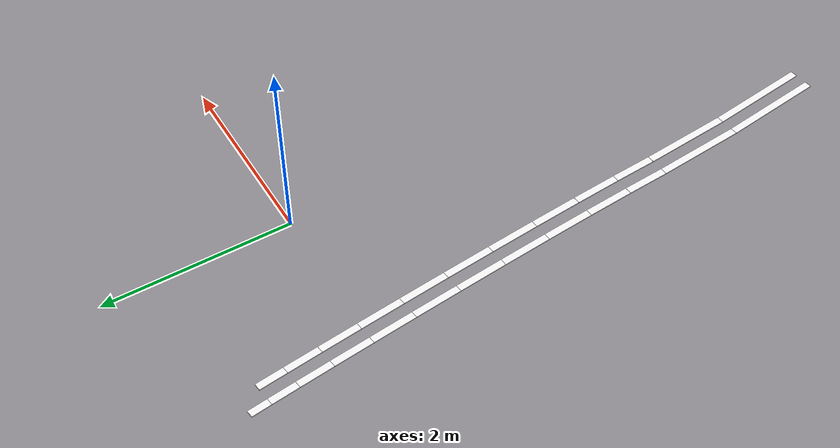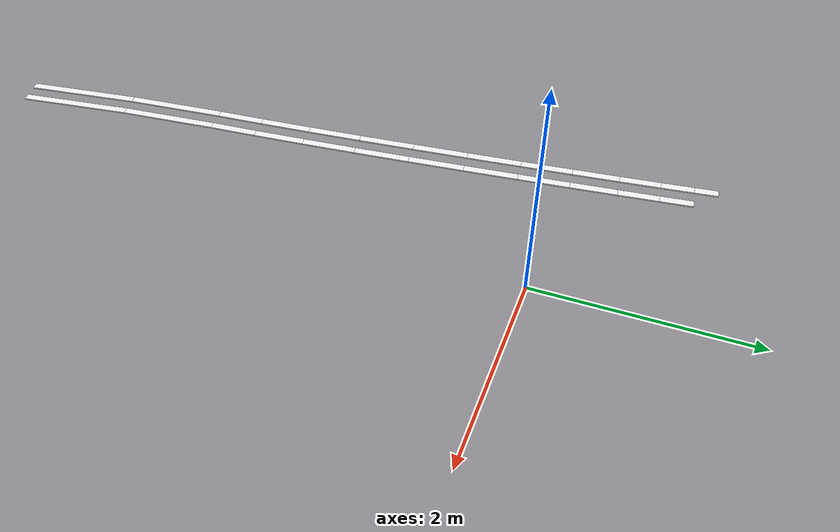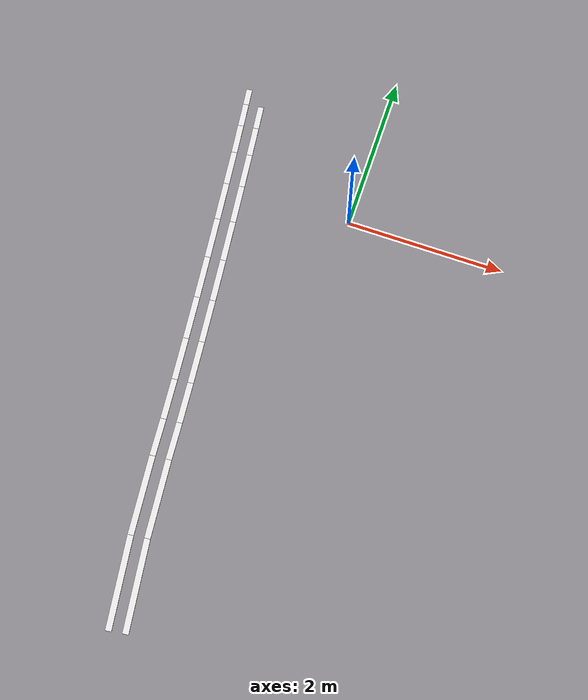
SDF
<sdf version="1.9">
 <world name="igvc_competition">
  <model name="Line_001_0245">
   <static>1</static>
   <pose>-1.7938 1.2298 0.011 0 0 -1.441374</pose>
   <link name="link">
    <visual name="visual">
     <geometry><box><size>0.2154 0.0762 0.012</size></box></geometry>
     <material>
      <ambient>0.98 0.98 0.98 1</ambient>
      <diffuse>0.98 0.98 0.98 1</diffuse>
      <specular>0.05 0.05 0.05 1</specular>
      <emissive>0.9 0.9 0.9 1</emissive>
     </material>
    </visual>
   </link>
  </model>
  <model name="Line_001_0246">
   <static>1</static>
   <pose>-1.5626 0.9964 0.011 0 0 -1.447009</pose>
   <link name="link">
    <visual name="visual">
     <geometry><box><size>0.3061 0.0762 0.012</size></box></geometry>
     <material>
      <ambient>0.98 0.98 0.98 1</ambient>
      <diffuse>0.98 0.98 0.98 1</diffuse>
      <specular>0.05 0.05 0.05 1</specular>
      <emissive>0.9 0.9 0.9 1</emissive>
     </material>
    </visual>
   </link>
  </model>
  <model name="Line_001_0247">
   <static>1</static>
   <pose>-1.7611 0.9716 0.011 0 0 -1.446929</pose>
   <link name="link">
    <visual name="visual">
     <geometry><box><size>0.3051 0.0762 0.012</size></box></geometry>
     <material>
      <ambient>0.98 0.98 0.98 1</ambient>
      <diffuse>0.98 0.98 0.98 1</diffuse>
      <specular>0.05 0.05 0.05 1</specular>
      <emissive>0.9 0.9 0.9 1</emissive>
     </material>
    </visual>
   </link>
  </model>
  <model name="Line_001_0248">
   <static>1</static>
   <pose>-1.5209 0.6556 0.011 0 0 -1.450679</pose>
   <link name="link">
    <visual name="visual">
     <geometry><box><size>0.3805 0.0762 0.012</size></box></geometry>
     <material>
      <ambient>0.98 0.98 0.98 1</ambient>
      <diffuse>0.98 0.98 0.98 1</diffuse>
      <specular>0.05 0.05 0.05 1</specular>
      <emissive>0.9 0.9 0.9 1</emissive>
     </material>
    </visual>
   </link>
  </model>
  <model name="Line_001_0249">
   <static>1</static>
   <pose>-1.7195 0.6317 0.011 0 0 -1.450719</pose>
   <link name="link">
    <visual name="visual">
     <geometry><box><size>0.3798 0.0762 0.012</size></box></geometry>
     <material>
      <ambient>0.98 0.98 0.98 1</ambient>
      <diffuse>0.98 0.98 0.98 1</diffuse>
      <specular>0.05 0.05 0.05 1</specular>
      <emissive>0.9 0.9 0.9 1</emissive>
     </material>
    </visual>
   </link>
  </model>
  <model name="Line_001_0250">
   <static>1</static>
   <pose>-1.4726 0.2480 0.011 0 0 -1.454523</pose>
   <link name="link">
    <visual name="visual">
     <geometry><box><size>0.4405 0.0762 0.012</size></box></geometry>
     <material>
      <ambient>0.98 0.98 0.98 1</ambient>
      <diffuse>0.98 0.98 0.98 1</diffuse>
      <specular>0.05 0.05 0.05 1</specular>
      <emissive>0.9 0.9 0.9 1</emissive>
     </material>
    </visual>
   </link>
  </model>
  <model name="Line_001_0251">
   <static>1</static>
   <pose>-1.6712 0.2247 0.011 0 0 -1.454564</pose>
   <link name="link">
    <visual name="visual">
     <geometry><box><size>0.4398 0.0762 0.012</size></box></geometry>
     <material>
      <ambient>0.98 0.98 0.98 1</ambient>
      <diffuse>0.98 0.98 0.98 1</diffuse>
      <specular>0.05 0.05 0.05 1</specular>
      <emissive>0.9 0.9 0.9 1</emissive>
     </material>
    </visual>
   </link>
  </model>
  <model name="Line_001_0252">
   <static>1</static>
   <pose>-1.4196 -0.2122 0.011 0 0 -1.457775</pose>
   <link name="link">
    <visual name="visual">
     <geometry><box><size>0.4859 0.0762 0.012</size></box></geometry>
     <material>
      <ambient>0.98 0.98 0.98 1</ambient>
      <diffuse>0.98 0.98 0.98 1</diffuse>
      <specular>0.05 0.05 0.05 1</specular>
      <emissive>0.9 0.9 0.9 1</emissive>
     </material>
    </visual>
   </link>
  </model>
  <model name="Line_001_0253">
   <static>1</static>
   <pose>-1.6183 -0.2348 0.011 0 0 -1.457613</pose>
   <link name="link">
    <visual name="visual">
     <geometry><box><size>0.4852 0.0762 0.012</size></box></geometry>
     <material>
      <ambient>0.98 0.98 0.98 1</ambient>
      <diffuse>0.98 0.98 0.98 1</diffuse>
      <specular>0.05 0.05 0.05 1</specular>
      <emissive>0.9 0.9 0.9 1</emissive>
     </material>
    </visual>
   </link>
  </model>
  <model name="Line_001_0254">
   <static>1</static>
   <pose>-1.3640 -0.7105 0.011 0 0 -1.461443</pose>
   <link name="link">
    <visual name="visual">
     <geometry><box><size>0.5168 0.0762 0.012</size></box></geometry>
     <material>
      <ambient>0.98 0.98 0.98 1</ambient>
      <diffuse>0.98 0.98 0.98 1</diffuse>
      <specular>0.05 0.05 0.05 1</specular>
      <emissive>0.9 0.9 0.9 1</emissive>
     </material>
    </visual>
   </link>
  </model>
  <model name="Line_001_0255">
   <static>1</static>
   <pose>-1.5627 -0.7323 0.011 0 0 -1.461466</pose>
   <link name="link">
    <visual name="visual">
     <geometry><box><size>0.5160 0.0762 0.012</size></box></geometry>
     <material>
      <ambient>0.98 0.98 0.98 1</ambient>
      <diffuse>0.98 0.98 0.98 1</diffuse>
      <specular>0.05 0.05 0.05 1</specular>
      <emissive>0.9 0.9 0.9 1</emissive>
     </material>
    </visual>
   </link>
  </model>
  <model name="Line_001_0256">
   <static>1</static>
   <pose>-1.3078 -1.2325 0.011 0 0 -1.465586</pose>
   <link name="link">
    <visual name="visual">
     <geometry><box><size>0.5332 0.0762 0.012</size></box></geometry>
     <material>
      <ambient>0.98 0.98 0.98 1</ambient>
      <diffuse>0.98 0.98 0.98 1</diffuse>
      <specular>0.05 0.05 0.05 1</specular>
      <emissive>0.9 0.9 0.9 1</emissive>
     </material>
    </visual>
   </link>
  </model>
  <model name="Line_001_0257">
   <static>1</static>
   <pose>-1.5067 -1.2534 0.011 0 0 -1.465782</pose>
   <link name="link">
    <visual name="visual">
     <geometry><box><size>0.5323 0.0762 0.012</size></box></geometry>
     <material>
      <ambient>0.98 0.98 0.98 1</ambient>
      <diffuse>0.98 0.98 0.98 1</diffuse>
      <specular>0.05 0.05 0.05 1</specular>
      <emissive>0.9 0.9 0.9 1</emissive>
     </material>
    </visual>
   </link>
  </model>
  <model name="Line_001_0258">
   <static>1</static>
   <pose>-1.2530 -1.7637 0.011 0 0 -1.470625</pose>
   <link name="link">
    <visual name="visual">
     <geometry><box><size>0.5350 0.0762 0.012</size></box></geometry>
     <material>
      <ambient>0.98 0.98 0.98 1</ambient>
      <diffuse>0.98 0.98 0.98 1</diffuse>
      <specular>0.05 0.05 0.05 1</specular>
      <emissive>0.9 0.9 0.9 1</emissive>
     </material>
    </visual>
   </link>
  </model>
  <model name="Line_001_0259">
   <static>1</static>
   <pose>-1.4521 -1.7837 0.011 0 0 -1.470606</pose>
   <link name="link">
    <visual name="visual">
     <geometry><box><size>0.5339 0.0762 0.012</size></box></geometry>
     <material>
      <ambient>0.98 0.98 0.98 1</ambient>
      <diffuse>0.98 0.98 0.98 1</diffuse>
      <specular>0.05 0.05 0.05 1</specular>
      <emissive>0.9 0.9 0.9 1</emissive>
     </material>
    </visual>
   </link>
  </model>
  <model name="Line_001_0260">
   <static>1</static>
   <pose>-1.2018 -2.2899 0.011 0 0 -1.477034</pose>
   <link name="link">
    <visual name="visual">
     <geometry><box><size>0.5223 0.0762 0.012</size></box></geometry>
     <material>
      <ambient>0.98 0.98 0.98 1</ambient>
      <diffuse>0.98 0.98 0.98 1</diffuse>
      <specular>0.05 0.05 0.05 1</specular>
      <emissive>0.9 0.9 0.9 1</emissive>
     </material>
    </visual>
   </link>
  </model>
  <model name="Line_001_0261">
   <static>1</static>
   <pose>-1.4010 -2.3086 0.011 0 0 -1.476973</pose>
   <link name="link">
    <visual name="visual">
     <geometry><box><size>0.5209 0.0762 0.012</size></box></geometry>
     <material>
      <ambient>0.98 0.98 0.98 1</ambient>
      <diffuse>0.98 0.98 0.98 1</diffuse>
      <specular>0.05 0.05 0.05 1</specular>
      <emissive>0.9 0.9 0.9 1</emissive>
     </material>
    </visual>
   </link>
  </model>
  <model name="Line_001_0262">
   <static>1</static>
   <pose>-1.1562 -2.7967 0.011 0 0 -1.484889</pose>
   <link name="link">
    <visual name="visual">
     <geometry><box><size>0.4953 0.0762 0.012</size></box></geometry>
     <material>
      <ambient>0.98 0.98 0.98 1</ambient>
      <diffuse>0.98 0.98 0.98 1</diffuse>
      <specular>0.05 0.05 0.05 1</specular>
      <emissive>0.9 0.9 0.9 1</emissive>
     </material>
    </visual>
   </link>
  </model>
  <model name="Line_001_0263">
   <static>1</static>
   <pose>-1.3555 -2.8136 0.011 0 0 -1.484945</pose>
   <link name="link">
    <visual name="visual">
     <geometry><box><size>0.4933 0.0762 0.012</size></box></geometry>
     <material>
      <ambient>0.98 0.98 0.98 1</ambient>
      <diffuse>0.98 0.98 0.98 1</diffuse>
      <specular>0.05 0.05 0.05 1</specular>
      <emissive>0.9 0.9 0.9 1</emissive>
     </material>
    </visual>
   </link>
  </model>
  <model name="Line_001_0264">
   <static>1</static>
   <pose>-1.1180 -3.2687 0.011 0 0 -1.496163</pose>
   <link name="link">
    <visual name="visual">
     <geometry><box><size>0.4520 0.0762 0.012</size></box></geometry>
     <material>
      <ambient>0.98 0.98 0.98 1</ambient>
      <diffuse>0.98 0.98 0.98 1</diffuse>
      <specular>0.05 0.05 0.05 1</specular>
      <emissive>0.9 0.9 0.9 1</emissive>
     </material>
    </visual>
   </link>
  </model>
  <model name="Line_001_0265">
   <static>1</static>
   <pose>-1.3174 -3.2852 0.011 0 0 -1.496091</pose>
   <link name="link">
    <visual name="visual">
     <geometry><box><size>0.4529 0.0762 0.012</size></box></geometry>
     <material>
      <ambient>0.98 0.98 0.98 1</ambient>
      <diffuse>0.98 0.98 0.98 1</diffuse>
      <specular>0.05 0.05 0.05 1</specular>
      <emissive>0.9 0.9 0.9 1</emissive>
     </material>
    </visual>
   </link>
  </model>
  <model name="Line_001_0266">
   <static>1</static>
   <pose>-1.0568 -3.9585 0.011 0 0 -1.475489</pose>
   <link name="link">
    <visual name="visual">
     <geometry><box><size>0.9331 0.0762 0.012</size></box></geometry>
     <material>
      <ambient>0.98 0.98 0.98 1</ambient>
      <diffuse>0.98 0.98 0.98 1</diffuse>
      <specular>0.05 0.05 0.05 1</specular>
      <emissive>0.9 0.9 0.9 1</emissive>
     </material>
    </visual>
   </link>
  </model>
  <model name="Line_001_0267">
   <static>1</static>
   <pose>-1.2558 -3.9785 0.011 0 0 -1.475471</pose>
   <link name="link">
    <visual name="visual">
     <geometry><box><size>0.9393 0.0762 0.012</size></box></geometry>
     <material>
      <ambient>0.98 0.98 0.98 1</ambient>
      <diffuse>0.98 0.98 0.98 1</diffuse>
      <specular>0.05 0.05 0.05 1</specular>
      <emissive>0.9 0.9 0.9 1</emissive>
     </material>
    </visual>
   </link>
  </model>
  <model name="Line_001_0268">
   <static>1</static>
   <pose>-0.9396 -4.9554 0.011 0 0 -1.434979</pose>
   <link name="link">
    <visual name="visual">
     <geometry><box><size>1.0746 0.0762 0.012</size></box></geometry>
     <material>
      <ambient>0.98 0.98 0.98 1</ambient>
      <diffuse>0.98 0.98 0.98 1</diffuse>
      <specular>0.05 0.05 0.05 1</specular>
      <emissive>0.9 0.9 0.9 1</emissive>
     </material>
    </visual>
   </link>
  </model>
  <model name="Line_001_0269">
   <static>1</static>
   <pose>-1.1379 -4.9818 0.011 0 0 -1.434927</pose>
   <link name="link">
    <visual name="visual">
     <geometry><box><size>1.0816 0.0762 0.012</size></box></geometry>
     <material>
      <ambient>0.98 0.98 0.98 1</ambient>
      <diffuse>0.98 0.98 0.98 1</diffuse>
      <specular>0.05 0.05 0.05 1</specular>
      <emissive>0.9 0.9 0.9 1</emissive>
     </material>
    </visual>
   </link>
  </model>
 </world>
</sdf>
